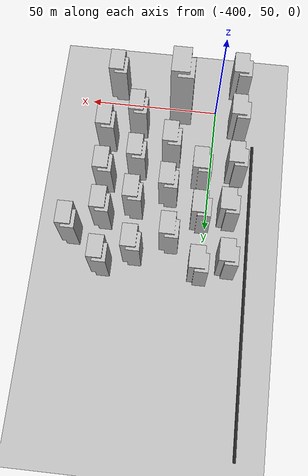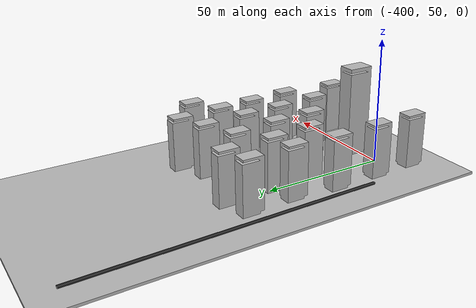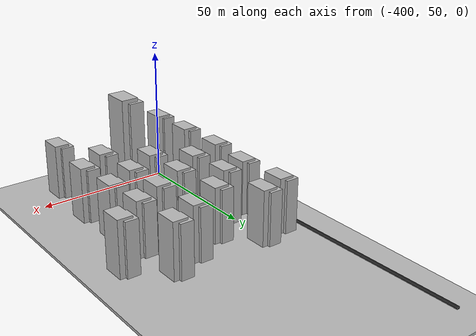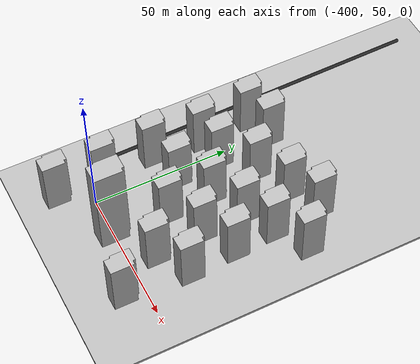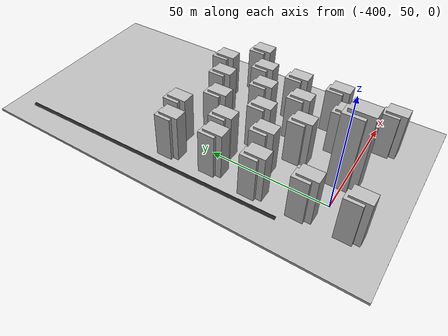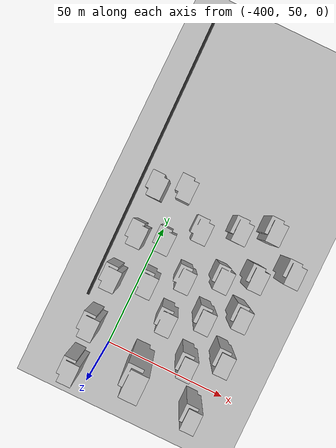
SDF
<sdf version="1.7">
 <world name="default">
  <model name="ground_plane">
   <static>1</static>
   <link name="link">
    <collision name="collision">
     <geometry><mesh><uri>model://ground_plane/scripts/plane.dae</uri><normal>0 0 1</normal></mesh></geometry>
     <surface><friction><ode><mu>100</mu><mu2>50</mu2></ode></friction></surface>
    </collision>
    <visual name="visual">
     <geometry><mesh><uri>model://ground_plane/scripts/plane.dae</uri><normal>0 0 1</normal></mesh></geometry>
     <material>
      <lighting>1</lighting>
      <script><uri>model://ground_plane/scripts/plane.jpg</uri><name>__default__</name></script>
      <shader type="pixel"/>
     </material>
    </visual>
   </link>
  </model>
  <model name="apartment1_0">
   <static>1</static>
   <link name="link_0">
    <inertial>
     <mass>1</mass>
     <inertia>
      <ixx>0.166667</ixx>
      <ixy>0</ixy>
      <ixz>0</ixz>
      <iyy>0.166667</iyy>
      <iyz>0</iyz>
      <izz>0.166667</izz>
     </inertia>
    </inertial>
    <pose>1e-06 -0 0 0 -0 0</pose>
    <visual name="visual">
     <geometry>
      <mesh><uri>model://apartment1/scripts/apartment1.dae</uri><scale>0.14 0.14 0.175</scale></mesh>
     </geometry>
     <material>
      <lighting>1</lighting>
      <script><uri>model://apartment1/scripts/apartment1.jpg</uri><name>__default__</name></script>
      <shader type="pixel"/>
     </material>
    </visual>
    <collision name="collision">
     <geometry>
      <mesh><uri>model://apartment1/scripts/apartment1.dae</uri><scale>0.14 0.14 0.175</scale></mesh>
     </geometry>
     <surface>
      <friction>
       <ode><mu>1</mu><mu2>1</mu2><fdir1>0 0 0</fdir1><slip1>0</slip1><slip2>0</slip2></ode>
       <torsional>
        <coefficient>1</coefficient>
        <patch_radius>0</patch_radius>
        <surface_radius>0</surface_radius>
        <use_patch_radius>1</use_patch_radius>
        <ode><slip>0</slip></ode>
       </torsional>
      </friction>
      <bounce><restitution_coefficient>0</restitution_coefficient><threshold>1e+06</threshold></bounce>
      <contact>
       <collide_without_contact>0</collide_without_contact>
       <collide_without_contact_bitmask>1</collide_without_contact_bitmask>
       <collide_bitmask>1</collide_bitmask>
       <ode>
        <soft_cfm>0</soft_cfm>
        <soft_erp>0.2</soft_erp>
        <kp>1e+13</kp>
        <kd>1</kd>
        <max_vel>0.01</max_vel>
        <min_depth>0</min_depth>
       </ode>
       <bullet>
        <split_impulse>1</split_impulse>
        <split_impulse_penetration_threshold>-0.01</split_impulse_penetration_threshold>
        <soft_cfm>0</soft_cfm>
        <soft_erp>0.2</soft_erp>
        <kp>1e+13</kp>
        <kd>1</kd>
       </bullet>
      </contact>
     </surface>
    </collision>
   </link>
   <static>0</static>
   <pose>-407.043 94.3264 0 0 -0 0</pose>
  </model>
  <model name="apartment1_0_clone">
   <static>1</static>
   <link name="link_0">
    <inertial>
     <mass>1</mass>
     <inertia>
      <ixx>0.166667</ixx>
      <ixy>0</ixy>
      <ixz>0</ixz>
      <iyy>0.166667</iyy>
      <iyz>0</iyz>
      <izz>0.166667</izz>
     </inertia>
    </inertial>
    <pose>1e-06 -0 0 0 -0 0</pose>
    <visual name="visual">
     <geometry>
      <mesh><uri>model://apartment1/scripts/apartment1.dae</uri><scale>0.14 0.14 0.175</scale></mesh>
     </geometry>
     <material>
      <lighting>1</lighting>
      <script><uri>model://apartment1/scripts/apartment1.jpg</uri><name>__default__</name></script>
      <shader type="pixel"/>
     </material>
    </visual>
    <collision name="collision">
     <geometry>
      <mesh><uri>model://apartment1/scripts/apartment1.dae</uri><scale>0.14 0.14 0.175</scale></mesh>
     </geometry>
     <surface>
      <friction>
       <ode><mu>1</mu><mu2>1</mu2><fdir1>0 0 0</fdir1><slip1>0</slip1><slip2>0</slip2></ode>
       <torsional>
        <coefficient>1</coefficient>
        <patch_radius>0</patch_radius>
        <surface_radius>0</surface_radius>
        <use_patch_radius>1</use_patch_radius>
        <ode><slip>0</slip></ode>
       </torsional>
      </friction>
      <bounce><restitution_coefficient>0</restitution_coefficient><threshold>1e+06</threshold></bounce>
      <contact>
       <collide_without_contact>0</collide_without_contact>
       <collide_without_contact_bitmask>1</collide_without_contact_bitmask>
       <collide_bitmask>1</collide_bitmask>
       <ode>
        <soft_cfm>0</soft_cfm>
        <soft_erp>0.2</soft_erp>
        <kp>1e+13</kp>
        <kd>1</kd>
        <max_vel>0.01</max_vel>
        <min_depth>0</min_depth>
       </ode>
       <bullet>
        <split_impulse>1</split_impulse>
        <split_impulse_penetration_threshold>-0.01</split_impulse_penetration_threshold>
        <soft_cfm>0</soft_cfm>
        <soft_erp>0.2</soft_erp>
        <kp>1e+13</kp>
        <kd>1</kd>
       </bullet>
      </contact>
     </surface>
    </collision>
   </link>
   <static>0</static>
   <pose>-408.706 75.8334 0 0 -0 0</pose>
  </model>
  <model name="apartment1_0_clone_0">
   <static>1</static>
   <link name="link_0">
    <inertial>
     <mass>1</mass>
     <inertia>
      <ixx>0.166667</ixx>
      <ixy>0</ixy>
      <ixz>0</ixz>
      <iyy>0.166667</iyy>
      <iyz>0</iyz>
      <izz>0.166667</izz>
     </inertia>
    </inertial>
    <pose>1e-06 -0 0 0 -0 0</pose>
    <visual name="visual">
     <geometry>
      <mesh><uri>model://apartment1/scripts/apartment1.dae</uri><scale>0.14 0.14 0.175</scale></mesh>
     </geometry>
     <material>
      <lighting>1</lighting>
      <script><uri>model://apartment1/scripts/apartment1.jpg</uri><name>__default__</name></script>
      <shader type="pixel"/>
     </material>
    </visual>
    <collision name="collision">
     <geometry>
      <mesh><uri>model://apartment1/scripts/apartment1.dae</uri><scale>0.14 0.14 0.175</scale></mesh>
     </geometry>
     <surface>
      <friction>
       <ode><mu>1</mu><mu2>1</mu2><fdir1>0 0 0</fdir1><slip1>0</slip1><slip2>0</slip2></ode>
       <torsional>
        <coefficient>1</coefficient>
        <patch_radius>0</patch_radius>
        <surface_radius>0</surface_radius>
        <use_patch_radius>1</use_patch_radius>
        <ode><slip>0</slip></ode>
       </torsional>
      </friction>
      <bounce><restitution_coefficient>0</restitution_coefficient><threshold>1e+06</threshold></bounce>
      <contact>
       <collide_without_contact>0</collide_without_contact>
       <collide_without_contact_bitmask>1</collide_without_contact_bitmask>
       <collide_bitmask>1</collide_bitmask>
       <ode>
        <soft_cfm>0</soft_cfm>
        <soft_erp>0.2</soft_erp>
        <kp>1e+13</kp>
        <kd>1</kd>
        <max_vel>0.01</max_vel>
        <min_depth>0</min_depth>
       </ode>
       <bullet>
        <split_impulse>1</split_impulse>
        <split_impulse_penetration_threshold>-0.01</split_impulse_penetration_threshold>
        <soft_cfm>0</soft_cfm>
        <soft_erp>0.2</soft_erp>
        <kp>1e+13</kp>
        <kd>1</kd>
       </bullet>
      </contact>
     </surface>
    </collision>
   </link>
   <static>0</static>
   <pose>-408.281 56.4981 0 0 -0 0</pose>
  </model>
  <model name="apartment1_0_clone_1">
   <static>1</static>
   <link name="link_0">
    <inertial>
     <mass>1</mass>
     <inertia>
      <ixx>0.166667</ixx>
      <ixy>0</ixy>
      <ixz>0</ixz>
      <iyy>0.166667</iyy>
      <iyz>0</iyz>
      <izz>0.166667</izz>
     </inertia>
    </inertial>
    <pose>1e-06 -0 0 0 -0 0</pose>
    <visual name="visual">
     <geometry>
      <mesh><uri>model://apartment1/scripts/apartment1.dae</uri><scale>0.14 0.14 0.175</scale></mesh>
     </geometry>
     <material>
      <lighting>1</lighting>
      <script><uri>model://apartment1/scripts/apartment1.jpg</uri><name>__default__</name></script>
      <shader type="pixel"/>
     </material>
    </visual>
    <collision name="collision">
     <geometry>
      <mesh><uri>model://apartment1/scripts/apartment1.dae</uri><scale>0.14 0.14 0.175</scale></mesh>
     </geometry>
     <surface>
      <friction>
       <ode><mu>1</mu><mu2>1</mu2><fdir1>0 0 0</fdir1><slip1>0</slip1><slip2>0</slip2></ode>
       <torsional>
        <coefficient>1</coefficient>
        <patch_radius>0</patch_radius>
        <surface_radius>0</surface_radius>
        <use_patch_radius>1</use_patch_radius>
        <ode><slip>0</slip></ode>
       </torsional>
      </friction>
      <bounce><restitution_coefficient>0</restitution_coefficient><threshold>1e+06</threshold></bounce>
      <contact>
       <collide_without_contact>0</collide_without_contact>
       <collide_without_contact_bitmask>1</collide_without_contact_bitmask>
       <collide_bitmask>1</collide_bitmask>
       <ode>
        <soft_cfm>0</soft_cfm>
        <soft_erp>0.2</soft_erp>
        <kp>1e+13</kp>
        <kd>1</kd>
        <max_vel>0.01</max_vel>
        <min_depth>0</min_depth>
       </ode>
       <bullet>
        <split_impulse>1</split_impulse>
        <split_impulse_penetration_threshold>-0.01</split_impulse_penetration_threshold>
        <soft_cfm>0</soft_cfm>
        <soft_erp>0.2</soft_erp>
        <kp>1e+13</kp>
        <kd>1</kd>
       </bullet>
      </contact>
     </surface>
    </collision>
   </link>
   <static>0</static>
   <pose>-407.724 38.7538 0 0 -0 0</pose>
  </model>
  <model name="apartment1_0_clone_12">
   <static>1</static>
   <link name="link_0">
    <inertial>
     <mass>1</mass>
     <inertia>
      <ixx>0.166667</ixx>
      <ixy>0</ixy>
      <ixz>0</ixz>
      <iyy>0.166667</iyy>
      <iyz>0</iyz>
      <izz>0.166667</izz>
     </inertia>
    </inertial>
    <pose>1e-06 -0 0 0 -0 0</pose>
    <visual name="visual">
     <geometry>
      <mesh><uri>model://apartment1/scripts/apartment1.dae</uri><scale>0.14 0.14 0.175</scale></mesh>
     </geometry>
     <material>
      <lighting>1</lighting>
      <script><uri>model://apartment1/scripts/apartment1.jpg</uri><name>__default__</name></script>
      <shader type="pixel"/>
     </material>
    </visual>
    <collision name="collision">
     <geometry>
      <mesh><uri>model://apartment1/scripts/apartment1.dae</uri><scale>0.14 0.14 0.175</scale></mesh>
     </geometry>
     <surface>
      <friction>
       <ode><mu>1</mu><mu2>1</mu2><fdir1>0 0 0</fdir1><slip1>0</slip1><slip2>0</slip2></ode>
       <torsional>
        <coefficient>1</coefficient>
        <patch_radius>0</patch_radius>
        <surface_radius>0</surface_radius>
        <use_patch_radius>1</use_patch_radius>
        <ode><slip>0</slip></ode>
       </torsional>
      </friction>
      <bounce><restitution_coefficient>0</restitution_coefficient><threshold>1e+06</threshold></bounce>
      <contact>
       <collide_without_contact>0</collide_without_contact>
       <collide_without_contact_bitmask>1</collide_without_contact_bitmask>
       <collide_bitmask>1</collide_bitmask>
       <ode>
        <soft_cfm>0</soft_cfm>
        <soft_erp>0.2</soft_erp>
        <kp>1e+13</kp>
        <kd>1</kd>
        <max_vel>0.01</max_vel>
        <min_depth>0</min_depth>
       </ode>
       <bullet>
        <split_impulse>1</split_impulse>
        <split_impulse_penetration_threshold>-0.01</split_impulse_penetration_threshold>
        <soft_cfm>0</soft_cfm>
        <soft_erp>0.2</soft_erp>
        <kp>1e+13</kp>
        <kd>1</kd>
       </bullet>
      </contact>
     </surface>
    </collision>
   </link>
   <static>0</static>
   <pose>-408.092 113.388 0 0 -0 0</pose>
  </model>
  <model name="apartment1_0_clone_45">
   <static>1</static>
   <link name="link_0">
    <inertial>
     <mass>1</mass>
     <inertia>
      <ixx>0.166667</ixx>
      <ixy>0</ixy>
      <ixz>0</ixz>
      <iyy>0.166667</iyy>
      <iyz>0</iyz>
      <izz>0.166667</izz>
     </inertia>
    </inertial>
    <pose>1e-06 -0 0 0 -0 0</pose>
    <visual name="visual">
     <geometry>
      <mesh><uri>model://apartment1/scripts/apartment1.dae</uri><scale>0.14 0.14 0.175</scale></mesh>
     </geometry>
     <material>
      <lighting>1</lighting>
      <script><uri>model://apartment1/scripts/apartment1.jpg</uri><name>__default__</name></script>
      <shader type="pixel"/>
     </material>
    </visual>
    <collision name="collision">
     <geometry>
      <mesh><uri>model://apartment1/scripts/apartment1.dae</uri><scale>0.14 0.14 0.175</scale></mesh>
     </geometry>
     <surface>
      <friction>
       <ode><mu>1</mu><mu2>1</mu2><fdir1>0 0 0</fdir1><slip1>0</slip1><slip2>0</slip2></ode>
       <torsional>
        <coefficient>1</coefficient>
        <patch_radius>0</patch_radius>
        <surface_radius>0</surface_radius>
        <use_patch_radius>1</use_patch_radius>
        <ode><slip>0</slip></ode>
       </torsional>
      </friction>
      <bounce><restitution_coefficient>0</restitution_coefficient><threshold>1e+06</threshold></bounce>
      <contact>
       <collide_without_contact>0</collide_without_contact>
       <collide_without_contact_bitmask>1</collide_without_contact_bitmask>
       <collide_bitmask>1</collide_bitmask>
       <ode>
        <soft_cfm>0</soft_cfm>
        <soft_erp>0.2</soft_erp>
        <kp>1e+13</kp>
        <kd>1</kd>
        <max_vel>0.01</max_vel>
        <min_depth>0</min_depth>
       </ode>
       <bullet>
        <split_impulse>1</split_impulse>
        <split_impulse_penetration_threshold>-0.01</split_impulse_penetration_threshold>
        <soft_cfm>0</soft_cfm>
        <soft_erp>0.2</soft_erp>
        <kp>1e+13</kp>
        <kd>1</kd>
       </bullet>
      </contact>
     </surface>
    </collision>
   </link>
   <static>0</static>
   <pose>-360.235 42.4394 0 0 -0 0</pose>
  </model>
  <model name="apartment1_0_clone_1_clone_1">
   <static>1</static>
   <link name="link_0">
    <inertial>
     <mass>1</mass>
     <inertia>
      <ixx>0.166667</ixx>
      <ixy>0</ixy>
      <ixz>0</ixz>
      <iyy>0.166667</iyy>
      <iyz>0</iyz>
      <izz>0.166667</izz>
     </inertia>
    </inertial>
    <pose>1e-06 -0 0 0 -0 0</pose>
    <visual name="visual">
     <geometry>
      <mesh><uri>model://apartment1/scripts/apartment1.dae</uri><scale>0.14 0.14 0.175</scale></mesh>
     </geometry>
     <material>
      <lighting>1</lighting>
      <script><uri>model://apartment1/scripts/apartment1.jpg</uri><name>__default__</name></script>
      <shader type="pixel"/>
     </material>
    </visual>
    <collision name="collision">
     <geometry>
      <mesh><uri>model://apartment1/scripts/apartment1.dae</uri><scale>0.14 0.14 0.175</scale></mesh>
     </geometry>
     <surface>
      <friction>
       <ode><mu>1</mu><mu2>1</mu2><fdir1>0 0 0</fdir1><slip1>0</slip1><slip2>0</slip2></ode>
       <torsional>
        <coefficient>1</coefficient>
        <patch_radius>0</patch_radius>
        <surface_radius>0</surface_radius>
        <use_patch_radius>1</use_patch_radius>
        <ode><slip>0</slip></ode>
       </torsional>
      </friction>
      <bounce><restitution_coefficient>0</restitution_coefficient><threshold>1e+06</threshold></bounce>
      <contact>
       <collide_without_contact>0</collide_without_contact>
       <collide_without_contact_bitmask>1</collide_without_contact_bitmask>
       <collide_bitmask>1</collide_bitmask>
       <ode>
        <soft_cfm>0</soft_cfm>
        <soft_erp>0.2</soft_erp>
        <kp>1e+13</kp>
        <kd>1</kd>
        <max_vel>0.01</max_vel>
        <min_depth>0</min_depth>
       </ode>
       <bullet>
        <split_impulse>1</split_impulse>
        <split_impulse_penetration_threshold>-0.01</split_impulse_penetration_threshold>
        <soft_cfm>0</soft_cfm>
        <soft_erp>0.2</soft_erp>
        <kp>1e+13</kp>
        <kd>1</kd>
       </bullet>
      </contact>
     </surface>
    </collision>
   </link>
   <static>0</static>
   <pose>-369.727 58.68 0 0 -0 0</pose>
  </model>
  <model name="apartment1_0_clone_1_clone_2">
   <static>1</static>
   <link name="link_0">
    <inertial>
     <mass>1</mass>
     <inertia>
      <ixx>0.166667</ixx>
      <ixy>0</ixy>
      <ixz>0</ixz>
      <iyy>0.166667</iyy>
      <iyz>0</iyz>
      <izz>0.166667</izz>
     </inertia>
    </inertial>
    <pose>1e-06 -0 0 0 -0 0</pose>
    <visual name="visual">
     <geometry>
      <mesh><uri>model://apartment1/scripts/apartment1.dae</uri><scale>0.14 0.14 0.175</scale></mesh>
     </geometry>
     <material>
      <lighting>1</lighting>
      <script><uri>model://apartment1/scripts/apartment1.jpg</uri><name>__default__</name></script>
      <shader type="pixel"/>
     </material>
    </visual>
    <collision name="collision">
     <geometry>
      <mesh><uri>model://apartment1/scripts/apartment1.dae</uri><scale>0.14 0.14 0.175</scale></mesh>
     </geometry>
     <surface>
      <friction>
       <ode><mu>1</mu><mu2>1</mu2><fdir1>0 0 0</fdir1><slip1>0</slip1><slip2>0</slip2></ode>
       <torsional>
        <coefficient>1</coefficient>
        <patch_radius>0</patch_radius>
        <surface_radius>0</surface_radius>
        <use_patch_radius>1</use_patch_radius>
        <ode><slip>0</slip></ode>
       </torsional>
      </friction>
      <bounce><restitution_coefficient>0</restitution_coefficient><threshold>1e+06</threshold></bounce>
      <contact>
       <collide_without_contact>0</collide_without_contact>
       <collide_without_contact_bitmask>1</collide_without_contact_bitmask>
       <collide_bitmask>1</collide_bitmask>
       <ode>
        <soft_cfm>0</soft_cfm>
        <soft_erp>0.2</soft_erp>
        <kp>1e+13</kp>
        <kd>1</kd>
        <max_vel>0.01</max_vel>
        <min_depth>0</min_depth>
       </ode>
       <bullet>
        <split_impulse>1</split_impulse>
        <split_impulse_penetration_threshold>-0.01</split_impulse_penetration_threshold>
        <soft_cfm>0</soft_cfm>
        <soft_erp>0.2</soft_erp>
        <kp>1e+13</kp>
        <kd>1</kd>
       </bullet>
      </contact>
     </surface>
    </collision>
   </link>
   <static>0</static>
   <pose>-358.222 65.8148 0 0 -0 0</pose>
  </model>
  <model name="apartment1_0_clone_1_clone_9">
   <static>1</static>
   <link name="link_0">
    <inertial>
     <mass>1</mass>
     <inertia>
      <ixx>0.166667</ixx>
      <ixy>0</ixy>
      <ixz>0</ixz>
      <iyy>0.166667</iyy>
      <iyz>0</iyz>
      <izz>0.166667</izz>
     </inertia>
    </inertial>
    <pose>1e-06 -0 0 0 -0 0</pose>
    <visual name="visual">
     <geometry>
      <mesh><uri>model://apartment1/scripts/apartment1.dae</uri><scale>0.14 0.14 0.175</scale></mesh>
     </geometry>
     <material>
      <lighting>1</lighting>
      <script><uri>model://apartment1/scripts/apartment1.jpg</uri><name>__default__</name></script>
      <shader type="pixel"/>
     </material>
    </visual>
    <collision name="collision">
     <geometry>
      <mesh><uri>model://apartment1/scripts/apartment1.dae</uri><scale>0.14 0.14 0.175</scale></mesh>
     </geometry>
     <surface>
      <friction>
       <ode><mu>1</mu><mu2>1</mu2><fdir1>0 0 0</fdir1><slip1>0</slip1><slip2>0</slip2></ode>
       <torsional>
        <coefficient>1</coefficient>
        <patch_radius>0</patch_radius>
        <surface_radius>0</surface_radius>
        <use_patch_radius>1</use_patch_radius>
        <ode><slip>0</slip></ode>
       </torsional>
      </friction>
      <bounce><restitution_coefficient>0</restitution_coefficient><threshold>1e+06</threshold></bounce>
      <contact>
       <collide_without_contact>0</collide_without_contact>
       <collide_without_contact_bitmask>1</collide_without_contact_bitmask>
       <collide_bitmask>1</collide_bitmask>
       <ode>
        <soft_cfm>0</soft_cfm>
        <soft_erp>0.2</soft_erp>
        <kp>1e+13</kp>
        <kd>1</kd>
        <max_vel>0.01</max_vel>
        <min_depth>0</min_depth>
       </ode>
       <bullet>
        <split_impulse>1</split_impulse>
        <split_impulse_penetration_threshold>-0.01</split_impulse_penetration_threshold>
        <soft_cfm>0</soft_cfm>
        <soft_erp>0.2</soft_erp>
        <kp>1e+13</kp>
        <kd>1</kd>
       </bullet>
      </contact>
     </surface>
    </collision>
   </link>
   <static>0</static>
   <pose>-383.665 70.1274 0 0 -0 0</pose>
  </model>
  <model name="apartment1_0_clone_1_clone_10">
   <static>1</static>
   <link name="link_0">
    <inertial>
     <mass>1</mass>
     <inertia>
      <ixx>0.166667</ixx>
      <ixy>0</ixy>
      <ixz>0</ixz>
      <iyy>0.166667</iyy>
      <iyz>0</iyz>
      <izz>0.166667</izz>
     </inertia>
    </inertial>
    <pose>1e-06 -0 0 0 -0 0</pose>
    <visual name="visual">
     <geometry>
      <mesh><uri>model://apartment1/scripts/apartment1.dae</uri><scale>0.14 0.14 0.175</scale></mesh>
     </geometry>
     <material>
      <lighting>1</lighting>
      <script><uri>model://apartment1/scripts/apartment1.jpg</uri><name>__default__</name></script>
      <shader type="pixel"/>
     </material>
    </visual>
    <collision name="collision">
     <geometry>
      <mesh><uri>model://apartment1/scripts/apartment1.dae</uri><scale>0.14 0.14 0.175</scale></mesh>
     </geometry>
     <surface>
      <friction>
       <ode><mu>1</mu><mu2>1</mu2><fdir1>0 0 0</fdir1><slip1>0</slip1><slip2>0</slip2></ode>
       <torsional>
        <coefficient>1</coefficient>
        <patch_radius>0</patch_radius>
        <surface_radius>0</surface_radius>
        <use_patch_radius>1</use_patch_radius>
        <ode><slip>0</slip></ode>
       </torsional>
      </friction>
      <bounce><restitution_coefficient>0</restitution_coefficient><threshold>1e+06</threshold></bounce>
      <contact>
       <collide_without_contact>0</collide_without_contact>
       <collide_without_contact_bitmask>1</collide_without_contact_bitmask>
       <collide_bitmask>1</collide_bitmask>
       <ode>
        <soft_cfm>0</soft_cfm>
        <soft_erp>0.2</soft_erp>
        <kp>1e+13</kp>
        <kd>1</kd>
        <max_vel>0.01</max_vel>
        <min_depth>0</min_depth>
       </ode>
       <bullet>
        <split_impulse>1</split_impulse>
        <split_impulse_penetration_threshold>-0.01</split_impulse_penetration_threshold>
        <soft_cfm>0</soft_cfm>
        <soft_erp>0.2</soft_erp>
        <kp>1e+13</kp>
        <kd>1</kd>
       </bullet>
      </contact>
     </surface>
    </collision>
   </link>
   <static>0</static>
   <pose>-371.168 76.8511 0 0 -0 0</pose>
  </model>
  <model name="apartment1_0_clone_1_clone_11">
   <static>1</static>
   <link name="link_0">
    <inertial>
     <mass>1</mass>
     <inertia>
      <ixx>0.166667</ixx>
      <ixy>0</ixy>
      <ixz>0</ixz>
      <iyy>0.166667</iyy>
      <iyz>0</iyz>
      <izz>0.166667</izz>
     </inertia>
    </inertial>
    <pose>1e-06 -0 0 0 -0 0</pose>
    <visual name="visual">
     <geometry>
      <mesh><uri>model://apartment1/scripts/apartment1.dae</uri><scale>0.14 0.14 0.175</scale></mesh>
     </geometry>
     <material>
      <lighting>1</lighting>
      <script><uri>model://apartment1/scripts/apartment1.jpg</uri><name>__default__</name></script>
      <shader type="pixel"/>
     </material>
    </visual>
    <collision name="collision">
     <geometry>
      <mesh><uri>model://apartment1/scripts/apartment1.dae</uri><scale>0.14 0.14 0.175</scale></mesh>
     </geometry>
     <surface>
      <friction>
       <ode><mu>1</mu><mu2>1</mu2><fdir1>0 0 0</fdir1><slip1>0</slip1><slip2>0</slip2></ode>
       <torsional>
        <coefficient>1</coefficient>
        <patch_radius>0</patch_radius>
        <surface_radius>0</surface_radius>
        <use_patch_radius>1</use_patch_radius>
        <ode><slip>0</slip></ode>
       </torsional>
      </friction>
      <bounce><restitution_coefficient>0</restitution_coefficient><threshold>1e+06</threshold></bounce>
      <contact>
       <collide_without_contact>0</collide_without_contact>
       <collide_without_contact_bitmask>1</collide_without_contact_bitmask>
       <collide_bitmask>1</collide_bitmask>
       <ode>
        <soft_cfm>0</soft_cfm>
        <soft_erp>0.2</soft_erp>
        <kp>1e+13</kp>
        <kd>1</kd>
        <max_vel>0.01</max_vel>
        <min_depth>0</min_depth>
       </ode>
       <bullet>
        <split_impulse>1</split_impulse>
        <split_impulse_penetration_threshold>-0.01</split_impulse_penetration_threshold>
        <soft_cfm>0</soft_cfm>
        <soft_erp>0.2</soft_erp>
        <kp>1e+13</kp>
        <kd>1</kd>
       </bullet>
      </contact>
     </surface>
    </collision>
   </link>
   <static>0</static>
   <pose>-359.446 83.2664 0 0 -0 0</pose>
  </model>
  <model name="apartment1_0_clone_1_clone_17">
   <static>1</static>
   <link name="link_0">
    <inertial>
     <mass>1</mass>
     <inertia>
      <ixx>0.166667</ixx>
      <ixy>0</ixy>
      <ixz>0</ixz>
      <iyy>0.166667</iyy>
      <iyz>0</iyz>
      <izz>0.166667</izz>
     </inertia>
    </inertial>
    <pose>1e-06 -0 0 0 -0 0</pose>
    <visual name="visual">
     <geometry>
      <mesh><uri>model://apartment1/scripts/apartment1.dae</uri><scale>0.14 0.14 0.175</scale></mesh>
     </geometry>
     <material>
      <lighting>1</lighting>
      <script><uri>model://apartment1/scripts/apartment1.jpg</uri><name>__default__</name></script>
      <shader type="pixel"/>
     </material>
    </visual>
    <collision name="collision">
     <geometry>
      <mesh><uri>model://apartment1/scripts/apartment1.dae</uri><scale>0.14 0.14 0.175</scale></mesh>
     </geometry>
     <surface>
      <friction>
       <ode><mu>1</mu><mu2>1</mu2><fdir1>0 0 0</fdir1><slip1>0</slip1><slip2>0</slip2></ode>
       <torsional>
        <coefficient>1</coefficient>
        <patch_radius>0</patch_radius>
        <surface_radius>0</surface_radius>
        <use_patch_radius>1</use_patch_radius>
        <ode><slip>0</slip></ode>
       </torsional>
      </friction>
      <bounce><restitution_coefficient>0</restitution_coefficient><threshold>1e+06</threshold></bounce>
      <contact>
       <collide_without_contact>0</collide_without_contact>
       <collide_without_contact_bitmask>1</collide_without_contact_bitmask>
       <collide_bitmask>1</collide_bitmask>
       <ode>
        <soft_cfm>0</soft_cfm>
        <soft_erp>0.2</soft_erp>
        <kp>1e+13</kp>
        <kd>1</kd>
        <max_vel>0.01</max_vel>
        <min_depth>0</min_depth>
       </ode>
       <bullet>
        <split_impulse>1</split_impulse>
        <split_impulse_penetration_threshold>-0.01</split_impulse_penetration_threshold>
        <soft_cfm>0</soft_cfm>
        <soft_erp>0.2</soft_erp>
        <kp>1e+13</kp>
        <kd>1</kd>
       </bullet>
      </contact>
     </surface>
    </collision>
   </link>
   <static>0</static>
   <pose>-395.846 79.5172 0 0 -0 0</pose>
  </model>
  <model name="apartment1_0_clone_1_clone_18">
   <static>1</static>
   <link name="link_0">
    <inertial>
     <mass>1</mass>
     <inertia>
      <ixx>0.166667</ixx>
      <ixy>0</ixy>
      <ixz>0</ixz>
      <iyy>0.166667</iyy>
      <iyz>0</iyz>
      <izz>0.166667</izz>
     </inertia>
    </inertial>
    <pose>1e-06 -0 0 0 -0 0</pose>
    <visual name="visual">
     <geometry>
      <mesh><uri>model://apartment1/scripts/apartment1.dae</uri><scale>0.14 0.14 0.175</scale></mesh>
     </geometry>
     <material>
      <lighting>1</lighting>
      <script><uri>model://apartment1/scripts/apartment1.jpg</uri><name>__default__</name></script>
      <shader type="pixel"/>
     </material>
    </visual>
    <collision name="collision">
     <geometry>
      <mesh><uri>model://apartment1/scripts/apartment1.dae</uri><scale>0.14 0.14 0.175</scale></mesh>
     </geometry>
     <surface>
      <friction>
       <ode><mu>1</mu><mu2>1</mu2><fdir1>0 0 0</fdir1><slip1>0</slip1><slip2>0</slip2></ode>
       <torsional>
        <coefficient>1</coefficient>
        <patch_radius>0</patch_radius>
        <surface_radius>0</surface_radius>
        <use_patch_radius>1</use_patch_radius>
        <ode><slip>0</slip></ode>
       </torsional>
      </friction>
      <bounce><restitution_coefficient>0</restitution_coefficient><threshold>1e+06</threshold></bounce>
      <contact>
       <collide_without_contact>0</collide_without_contact>
       <collide_without_contact_bitmask>1</collide_without_contact_bitmask>
       <collide_bitmask>1</collide_bitmask>
       <ode>
        <soft_cfm>0</soft_cfm>
        <soft_erp>0.2</soft_erp>
        <kp>1e+13</kp>
        <kd>1</kd>
        <max_vel>0.01</max_vel>
        <min_depth>0</min_depth>
       </ode>
       <bullet>
        <split_impulse>1</split_impulse>
        <split_impulse_penetration_threshold>-0.01</split_impulse_penetration_threshold>
        <soft_cfm>0</soft_cfm>
        <soft_erp>0.2</soft_erp>
        <kp>1e+13</kp>
        <kd>1</kd>
       </bullet>
      </contact>
     </surface>
    </collision>
   </link>
   <static>0</static>
   <pose>-384.143 87.0357 0 0 -0 0</pose>
  </model>
  <model name="apartment1_0_clone_1_clone_19">
   <static>1</static>
   <link name="link_0">
    <inertial>
     <mass>1</mass>
     <inertia>
      <ixx>0.166667</ixx>
      <ixy>0</ixy>
      <ixz>0</ixz>
      <iyy>0.166667</iyy>
      <iyz>0</iyz>
      <izz>0.166667</izz>
     </inertia>
    </inertial>
    <pose>1e-06 -0 0 0 -0 0</pose>
    <visual name="visual">
     <geometry>
      <mesh><uri>model://apartment1/scripts/apartment1.dae</uri><scale>0.14 0.14 0.175</scale></mesh>
     </geometry>
     <material>
      <lighting>1</lighting>
      <script><uri>model://apartment1/scripts/apartment1.jpg</uri><name>__default__</name></script>
      <shader type="pixel"/>
     </material>
    </visual>
    <collision name="collision">
     <geometry>
      <mesh><uri>model://apartment1/scripts/apartment1.dae</uri><scale>0.14 0.14 0.175</scale></mesh>
     </geometry>
     <surface>
      <friction>
       <ode><mu>1</mu><mu2>1</mu2><fdir1>0 0 0</fdir1><slip1>0</slip1><slip2>0</slip2></ode>
       <torsional>
        <coefficient>1</coefficient>
        <patch_radius>0</patch_radius>
        <surface_radius>0</surface_radius>
        <use_patch_radius>1</use_patch_radius>
        <ode><slip>0</slip></ode>
       </torsional>
      </friction>
      <bounce><restitution_coefficient>0</restitution_coefficient><threshold>1e+06</threshold></bounce>
      <contact>
       <collide_without_contact>0</collide_without_contact>
       <collide_without_contact_bitmask>1</collide_without_contact_bitmask>
       <collide_bitmask>1</collide_bitmask>
       <ode>
        <soft_cfm>0</soft_cfm>
        <soft_erp>0.2</soft_erp>
        <kp>1e+13</kp>
        <kd>1</kd>
        <max_vel>0.01</max_vel>
        <min_depth>0</min_depth>
       </ode>
       <bullet>
        <split_impulse>1</split_impulse>
        <split_impulse_penetration_threshold>-0.01</split_impulse_penetration_threshold>
        <soft_cfm>0</soft_cfm>
        <soft_erp>0.2</soft_erp>
        <kp>1e+13</kp>
        <kd>1</kd>
       </bullet>
      </contact>
     </surface>
    </collision>
   </link>
   <static>0</static>
   <pose>-371.685 93.2054 0 0 -0 0</pose>
  </model>
  <model name="apartment1_0_clone_1_clone_20">
   <static>1</static>
   <link name="link_0">
    <inertial>
     <mass>1</mass>
     <inertia>
      <ixx>0.166667</ixx>
      <ixy>0</ixy>
      <ixz>0</ixz>
      <iyy>0.166667</iyy>
      <iyz>0</iyz>
      <izz>0.166667</izz>
     </inertia>
    </inertial>
    <pose>1e-06 -0 0 0 -0 0</pose>
    <visual name="visual">
     <geometry>
      <mesh><uri>model://apartment1/scripts/apartment1.dae</uri><scale>0.14 0.14 0.175</scale></mesh>
     </geometry>
     <material>
      <lighting>1</lighting>
      <script><uri>model://apartment1/scripts/apartment1.jpg</uri><name>__default__</name></script>
      <shader type="pixel"/>
     </material>
    </visual>
    <collision name="collision">
     <geometry>
      <mesh><uri>model://apartment1/scripts/apartment1.dae</uri><scale>0.14 0.14 0.175</scale></mesh>
     </geometry>
     <surface>
      <friction>
       <ode><mu>1</mu><mu2>1</mu2><fdir1>0 0 0</fdir1><slip1>0</slip1><slip2>0</slip2></ode>
       <torsional>
        <coefficient>1</coefficient>
        <patch_radius>0</patch_radius>
        <surface_radius>0</surface_radius>
        <use_patch_radius>1</use_patch_radius>
        <ode><slip>0</slip></ode>
       </torsional>
      </friction>
      <bounce><restitution_coefficient>0</restitution_coefficient><threshold>1e+06</threshold></bounce>
      <contact>
       <collide_without_contact>0</collide_without_contact>
       <collide_without_contact_bitmask>1</collide_without_contact_bitmask>
       <collide_bitmask>1</collide_bitmask>
       <ode>
        <soft_cfm>0</soft_cfm>
        <soft_erp>0.2</soft_erp>
        <kp>1e+13</kp>
        <kd>1</kd>
        <max_vel>0.01</max_vel>
        <min_depth>0</min_depth>
       </ode>
       <bullet>
        <split_impulse>1</split_impulse>
        <split_impulse_penetration_threshold>-0.01</split_impulse_penetration_threshold>
        <soft_cfm>0</soft_cfm>
        <soft_erp>0.2</soft_erp>
        <kp>1e+13</kp>
        <kd>1</kd>
       </bullet>
      </contact>
     </surface>
    </collision>
   </link>
   <static>0</static>
   <pose>-360.49 98.5861 0 0 -0 0</pose>
  </model>
  <model name="apartment1_0_clone_1_clone_21">
   <static>1</static>
   <link name="link_0">
    <inertial>
     <mass>1</mass>
     <inertia>
      <ixx>0.166667</ixx>
      <ixy>0</ixy>
      <ixz>0</ixz>
      <iyy>0.166667</iyy>
      <iyz>0</iyz>
      <izz>0.166667</izz>
     </inertia>
    </inertial>
    <pose>1e-06 -0 0 0 -0 0</pose>
    <visual name="visual">
     <geometry>
      <mesh><uri>model://apartment1/scripts/apartment1.dae</uri><scale>0.14 0.14 0.175</scale></mesh>
     </geometry>
     <material>
      <lighting>1</lighting>
      <script><uri>model://apartment1/scripts/apartment1.jpg</uri><name>__default__</name></script>
      <shader type="pixel"/>
     </material>
    </visual>
    <collision name="collision">
     <geometry>
      <mesh><uri>model://apartment1/scripts/apartment1.dae</uri><scale>0.14 0.14 0.175</scale></mesh>
     </geometry>
     <surface>
      <friction>
       <ode><mu>1</mu><mu2>1</mu2><fdir1>0 0 0</fdir1><slip1>0</slip1><slip2>0</slip2></ode>
       <torsional>
        <coefficient>1</coefficient>
        <patch_radius>0</patch_radius>
        <surface_radius>0</surface_radius>
        <use_patch_radius>1</use_patch_radius>
        <ode><slip>0</slip></ode>
       </torsional>
      </friction>
      <bounce><restitution_coefficient>0</restitution_coefficient><threshold>1e+06</threshold></bounce>
      <contact>
       <collide_without_contact>0</collide_without_contact>
       <collide_without_contact_bitmask>1</collide_without_contact_bitmask>
       <collide_bitmask>1</collide_bitmask>
       <ode>
        <soft_cfm>0</soft_cfm>
        <soft_erp>0.2</soft_erp>
        <kp>1e+13</kp>
        <kd>1</kd>
        <max_vel>0.01</max_vel>
        <min_depth>0</min_depth>
       </ode>
       <bullet>
        <split_impulse>1</split_impulse>
        <split_impulse_penetration_threshold>-0.01</split_impulse_penetration_threshold>
        <soft_cfm>0</soft_cfm>
        <soft_erp>0.2</soft_erp>
        <kp>1e+13</kp>
        <kd>1</kd>
       </bullet>
      </contact>
     </surface>
    </collision>
   </link>
   <static>0</static>
   <pose>-349.246 105.875 0 0 -0 0</pose>
  </model>
  <model name="apartment1_0_clone_1_clone_26">
   <static>1</static>
   <link name="link_0">
    <inertial>
     <mass>1</mass>
     <inertia>
      <ixx>0.166667</ixx>
      <ixy>0</ixy>
      <ixz>0</ixz>
      <iyy>0.166667</iyy>
      <iyz>0</iyz>
      <izz>0.166667</izz>
     </inertia>
    </inertial>
    <pose>1e-06 -0 0 0 -0 0</pose>
    <visual name="visual">
     <geometry>
      <mesh><uri>model://apartment1/scripts/apartment1.dae</uri><scale>0.14 0.14 0.175</scale></mesh>
     </geometry>
     <material>
      <lighting>1</lighting>
      <script><uri>model://apartment1/scripts/apartment1.jpg</uri><name>__default__</name></script>
      <shader type="pixel"/>
     </material>
    </visual>
    <collision name="collision">
     <geometry>
      <mesh><uri>model://apartment1/scripts/apartment1.dae</uri><scale>0.14 0.14 0.175</scale></mesh>
     </geometry>
     <surface>
      <friction>
       <ode><mu>1</mu><mu2>1</mu2><fdir1>0 0 0</fdir1><slip1>0</slip1><slip2>0</slip2></ode>
       <torsional>
        <coefficient>1</coefficient>
        <patch_radius>0</patch_radius>
        <surface_radius>0</surface_radius>
        <use_patch_radius>1</use_patch_radius>
        <ode><slip>0</slip></ode>
       </torsional>
      </friction>
      <bounce><restitution_coefficient>0</restitution_coefficient><threshold>1e+06</threshold></bounce>
      <contact>
       <collide_without_contact>0</collide_without_contact>
       <collide_without_contact_bitmask>1</collide_without_contact_bitmask>
       <collide_bitmask>1</collide_bitmask>
       <ode>
        <soft_cfm>0</soft_cfm>
        <soft_erp>0.2</soft_erp>
        <kp>1e+13</kp>
        <kd>1</kd>
        <max_vel>0.01</max_vel>
        <min_depth>0</min_depth>
       </ode>
       <bullet>
        <split_impulse>1</split_impulse>
        <split_impulse_penetration_threshold>-0.01</split_impulse_penetration_threshold>
        <soft_cfm>0</soft_cfm>
        <soft_erp>0.2</soft_erp>
        <kp>1e+13</kp>
        <kd>1</kd>
       </bullet>
      </contact>
     </surface>
    </collision>
   </link>
   <static>0</static>
   <pose>-397.017 96.4652 0 0 -0 0</pose>
  </model>
  <model name="apartment1_0_clone_1_clone_27">
   <static>1</static>
   <link name="link_0">
    <inertial>
     <mass>1</mass>
     <inertia>
      <ixx>0.166667</ixx>
      <ixy>0</ixy>
      <ixz>0</ixz>
      <iyy>0.166667</iyy>
      <iyz>0</iyz>
      <izz>0.166667</izz>
     </inertia>
    </inertial>
    <pose>1e-06 -0 0 0 -0 0</pose>
    <visual name="visual">
     <geometry>
      <mesh><uri>model://apartment1/scripts/apartment1.dae</uri><scale>0.14 0.14 0.175</scale></mesh>
     </geometry>
     <material>
      <lighting>1</lighting>
      <script><uri>model://apartment1/scripts/apartment1.jpg</uri><name>__default__</name></script>
      <shader type="pixel"/>
     </material>
    </visual>
    <collision name="collision">
     <geometry>
      <mesh><uri>model://apartment1/scripts/apartment1.dae</uri><scale>0.14 0.14 0.175</scale></mesh>
     </geometry>
     <surface>
      <friction>
       <ode><mu>1</mu><mu2>1</mu2><fdir1>0 0 0</fdir1><slip1>0</slip1><slip2>0</slip2></ode>
       <torsional>
        <coefficient>1</coefficient>
        <patch_radius>0</patch_radius>
        <surface_radius>0</surface_radius>
        <use_patch_radius>1</use_patch_radius>
        <ode><slip>0</slip></ode>
       </torsional>
      </friction>
      <bounce><restitution_coefficient>0</restitution_coefficient><threshold>1e+06</threshold></bounce>
      <contact>
       <collide_without_contact>0</collide_without_contact>
       <collide_without_contact_bitmask>1</collide_without_contact_bitmask>
       <collide_bitmask>1</collide_bitmask>
       <ode>
        <soft_cfm>0</soft_cfm>
        <soft_erp>0.2</soft_erp>
        <kp>1e+13</kp>
        <kd>1</kd>
        <max_vel>0.01</max_vel>
        <min_depth>0</min_depth>
       </ode>
       <bullet>
        <split_impulse>1</split_impulse>
        <split_impulse_penetration_threshold>-0.01</split_impulse_penetration_threshold>
        <soft_cfm>0</soft_cfm>
        <soft_erp>0.2</soft_erp>
        <kp>1e+13</kp>
        <kd>1</kd>
       </bullet>
      </contact>
     </surface>
    </collision>
   </link>
   <static>0</static>
   <pose>-386.319 105.721 0 0 -0 0</pose>
  </model>
  <model name="apartment1_0_clone_1_clone_28">
   <static>1</static>
   <link name="link_0">
    <inertial>
     <mass>1</mass>
     <inertia>
      <ixx>0.166667</ixx>
      <ixy>0</ixy>
      <ixz>0</ixz>
      <iyy>0.166667</iyy>
      <iyz>0</iyz>
      <izz>0.166667</izz>
     </inertia>
    </inertial>
    <pose>1e-06 -0 0 0 -0 0</pose>
    <visual name="visual">
     <geometry>
      <mesh><uri>model://apartment1/scripts/apartment1.dae</uri><scale>0.14 0.14 0.175</scale></mesh>
     </geometry>
     <material>
      <lighting>1</lighting>
      <script><uri>model://apartment1/scripts/apartment1.jpg</uri><name>__default__</name></script>
      <shader type="pixel"/>
     </material>
    </visual>
    <collision name="collision">
     <geometry>
      <mesh><uri>model://apartment1/scripts/apartment1.dae</uri><scale>0.14 0.14 0.175</scale></mesh>
     </geometry>
     <surface>
      <friction>
       <ode><mu>1</mu><mu2>1</mu2><fdir1>0 0 0</fdir1><slip1>0</slip1><slip2>0</slip2></ode>
       <torsional>
        <coefficient>1</coefficient>
        <patch_radius>0</patch_radius>
        <surface_radius>0</surface_radius>
        <use_patch_radius>1</use_patch_radius>
        <ode><slip>0</slip></ode>
       </torsional>
      </friction>
      <bounce><restitution_coefficient>0</restitution_coefficient><threshold>1e+06</threshold></bounce>
      <contact>
       <collide_without_contact>0</collide_without_contact>
       <collide_without_contact_bitmask>1</collide_without_contact_bitmask>
       <collide_bitmask>1</collide_bitmask>
       <ode>
        <soft_cfm>0</soft_cfm>
        <soft_erp>0.2</soft_erp>
        <kp>1e+13</kp>
        <kd>1</kd>
        <max_vel>0.01</max_vel>
        <min_depth>0</min_depth>
       </ode>
       <bullet>
        <split_impulse>1</split_impulse>
        <split_impulse_penetration_threshold>-0.01</split_impulse_penetration_threshold>
        <soft_cfm>0</soft_cfm>
        <soft_erp>0.2</soft_erp>
        <kp>1e+13</kp>
        <kd>1</kd>
       </bullet>
      </contact>
     </surface>
    </collision>
   </link>
   <static>0</static>
   <pose>-373.262 111.798 0 0 -0 0</pose>
  </model>
  <model name="apartment1_0_clone_1_clone_29">
   <static>1</static>
   <link name="link_0">
    <inertial>
     <mass>1</mass>
     <inertia>
      <ixx>0.166667</ixx>
      <ixy>0</ixy>
      <ixz>0</ixz>
      <iyy>0.166667</iyy>
      <iyz>0</iyz>
      <izz>0.166667</izz>
     </inertia>
    </inertial>
    <pose>1e-06 -0 0 0 -0 0</pose>
    <visual name="visual">
     <geometry>
      <mesh><uri>model://apartment1/scripts/apartment1.dae</uri><scale>0.14 0.14 0.175</scale></mesh>
     </geometry>
     <material>
      <lighting>1</lighting>
      <script><uri>model://apartment1/scripts/apartment1.jpg</uri><name>__default__</name></script>
      <shader type="pixel"/>
     </material>
    </visual>
    <collision name="collision">
     <geometry>
      <mesh><uri>model://apartment1/scripts/apartment1.dae</uri><scale>0.14 0.14 0.175</scale></mesh>
     </geometry>
     <surface>
      <friction>
       <ode><mu>1</mu><mu2>1</mu2><fdir1>0 0 0</fdir1><slip1>0</slip1><slip2>0</slip2></ode>
       <torsional>
        <coefficient>1</coefficient>
        <patch_radius>0</patch_radius>
        <surface_radius>0</surface_radius>
        <use_patch_radius>1</use_patch_radius>
        <ode><slip>0</slip></ode>
       </torsional>
      </friction>
      <bounce><restitution_coefficient>0</restitution_coefficient><threshold>1e+06</threshold></bounce>
      <contact>
       <collide_without_contact>0</collide_without_contact>
       <collide_without_contact_bitmask>1</collide_without_contact_bitmask>
       <collide_bitmask>1</collide_bitmask>
       <ode>
        <soft_cfm>0</soft_cfm>
        <soft_erp>0.2</soft_erp>
        <kp>1e+13</kp>
        <kd>1</kd>
        <max_vel>0.01</max_vel>
        <min_depth>0</min_depth>
       </ode>
       <bullet>
        <split_impulse>1</split_impulse>
        <split_impulse_penetration_threshold>-0.01</split_impulse_penetration_threshold>
        <soft_cfm>0</soft_cfm>
        <soft_erp>0.2</soft_erp>
        <kp>1e+13</kp>
        <kd>1</kd>
       </bullet>
      </contact>
     </surface>
    </collision>
   </link>
   <static>0</static>
   <pose>-362.021 117.039 0 0 -0 0</pose>
  </model>
  <model name="apartment1_0_clone_1_clone_33">
   <static>1</static>
   <link name="link_0">
    <inertial>
     <mass>1</mass>
     <inertia>
      <ixx>0.166667</ixx>
      <ixy>0</ixy>
      <ixz>0</ixz>
      <iyy>0.166667</iyy>
      <iyz>0</iyz>
      <izz>0.166667</izz>
     </inertia>
    </inertial>
    <pose>1e-06 -0 0 0 -0 0</pose>
    <visual name="visual">
     <geometry>
      <mesh><uri>model://apartment1/scripts/apartment1.dae</uri><scale>0.14 0.14 0.175</scale></mesh>
     </geometry>
     <material>
      <lighting>1</lighting>
      <script><uri>model://apartment1/scripts/apartment1.jpg</uri><name>__default__</name></script>
      <shader type="pixel"/>
     </material>
    </visual>
    <collision name="collision">
     <geometry>
      <mesh><uri>model://apartment1/scripts/apartment1.dae</uri><scale>0.14 0.14 0.175</scale></mesh>
     </geometry>
     <surface>
      <friction>
       <ode><mu>1</mu><mu2>1</mu2><fdir1>0 0 0</fdir1><slip1>0</slip1><slip2>0</slip2></ode>
       <torsional>
        <coefficient>1</coefficient>
        <patch_radius>0</patch_radius>
        <surface_radius>0</surface_radius>
        <use_patch_radius>1</use_patch_radius>
        <ode><slip>0</slip></ode>
       </torsional>
      </friction>
      <bounce><restitution_coefficient>0</restitution_coefficient><threshold>1e+06</threshold></bounce>
      <contact>
       <collide_without_contact>0</collide_without_contact>
       <collide_without_contact_bitmask>1</collide_without_contact_bitmask>
       <collide_bitmask>1</collide_bitmask>
       <ode>
        <soft_cfm>0</soft_cfm>
        <soft_erp>0.2</soft_erp>
        <kp>1e+13</kp>
        <kd>1</kd>
        <max_vel>0.01</max_vel>
        <min_depth>0</min_depth>
       </ode>
       <bullet>
        <split_impulse>1</split_impulse>
        <split_impulse_penetration_threshold>-0.01</split_impulse_penetration_threshold>
        <soft_cfm>0</soft_cfm>
        <soft_erp>0.2</soft_erp>
        <kp>1e+13</kp>
        <kd>1</kd>
       </bullet>
      </contact>
     </surface>
    </collision>
   </link>
   <static>0</static>
   <pose>-397.892 116.999 0 0 -0 0</pose>
  </model>
  <model name="tower_1">
   <static>1</static>
   <link name="link_0">
    <inertial>
     <mass>1</mass>
     <inertia>
      <ixx>0.166667</ixx>
      <ixy>0</ixy>
      <ixz>0</ixz>
      <iyy>0.166667</iyy>
      <iyz>0</iyz>
      <izz>0.166667</izz>
     </inertia>
    </inertial>
    <pose>1e-06 -0 0 0 -0 0</pose>
    <visual name="visual">
     <geometry><mesh><uri>model://tower/scripts/apartment1.dae</uri><scale>0.17 0.17 0.3</scale></mesh></geometry>
     <material>
      <lighting>1</lighting>
      <script><uri>model://tower/scripts/apartment1.jpg</uri><name>__default__</name></script>
      <shader type="pixel"/>
     </material>
    </visual>
    <collision name="collision">
     <geometry><mesh><uri>model://tower/scripts/apartment1.dae</uri><scale>0.17 0.17 0.3</scale></mesh></geometry>
     <surface>
      <friction>
       <ode><mu>1</mu><mu2>1</mu2><fdir1>0 0 0</fdir1><slip1>0</slip1><slip2>0</slip2></ode>
       <torsional>
        <coefficient>1</coefficient>
        <patch_radius>0</patch_radius>
        <surface_radius>0</surface_radius>
        <use_patch_radius>1</use_patch_radius>
        <ode><slip>0</slip></ode>
       </torsional>
      </friction>
      <bounce><restitution_coefficient>0</restitution_coefficient><threshold>1e+06</threshold></bounce>
      <contact>
       <collide_without_contact>0</collide_without_contact>
       <collide_without_contact_bitmask>1</collide_without_contact_bitmask>
       <collide_bitmask>1</collide_bitmask>
       <ode>
        <soft_cfm>0</soft_cfm>
        <soft_erp>0.2</soft_erp>
        <kp>1e+13</kp>
        <kd>1</kd>
        <max_vel>0.01</max_vel>
        <min_depth>0</min_depth>
       </ode>
       <bullet>
        <split_impulse>1</split_impulse>
        <split_impulse_penetration_threshold>-0.01</split_impulse_penetration_threshold>
        <soft_cfm>0</soft_cfm>
        <soft_erp>0.2</soft_erp>
        <kp>1e+13</kp>
        <kd>1</kd>
       </bullet>
      </contact>
     </surface>
    </collision>
   </link>
   <static>0</static>
   <pose>-385.245 49.6242 0 0 -0 0</pose>
  </model>
  <model name="curb1_clone_clone_clone">
   <static>1</static>
   <link name="link_5">
    <inertial>
     <mass>1</mass>
     <inertia>
      <ixx>0.166667</ixx>
      <ixy>0</ixy>
      <ixz>0</ixz>
      <iyy>0.166667</iyy>
      <iyz>0</iyz>
      <izz>0.166667</izz>
     </inertia>
    </inertial>
    <pose>-2.6e-05 -4.2e-05 0 0 -0 0</pose>
    <visual name="visual">
     <geometry><box><size>120 1 1.5</size></box></geometry>
     <material>
      <lighting>1</lighting>
      <script><uri>file://media/materials/scripts/gazebo.material</uri><name>Gazebo/Black</name></script>
      <shader type="pixel"/>
     </material>
    </visual>
    <collision name="collision">
     <geometry><box><size>120 1 1.5</size></box></geometry>
     <surface>
      <friction>
       <ode><mu>1</mu><mu2>1</mu2><fdir1>0 0 0</fdir1><slip1>0</slip1><slip2>0</slip2></ode>
       <torsional>
        <coefficient>1</coefficient>
        <patch_radius>0</patch_radius>
        <surface_radius>0</surface_radius>
        <use_patch_radius>1</use_patch_radius>
        <ode><slip>0</slip></ode>
       </torsional>
      </friction>
      <bounce><restitution_coefficient>0</restitution_coefficient><threshold>1e+06</threshold></bounce>
      <contact>
       <collide_without_contact>0</collide_without_contact>
       <collide_without_contact_bitmask>1</collide_without_contact_bitmask>
       <collide_bitmask>1</collide_bitmask>
       <ode>
        <soft_cfm>0</soft_cfm>
        <soft_erp>0.2</soft_erp>
        <kp>1e+13</kp>
        <kd>1</kd>
        <max_vel>0.01</max_vel>
        <min_depth>0</min_depth>
       </ode>
       <bullet>
        <split_impulse>1</split_impulse>
        <split_impulse_penetration_threshold>-0.01</split_impulse_penetration_threshold>
        <soft_cfm>0</soft_cfm>
        <soft_erp>0.2</soft_erp>
        <kp>1e+13</kp>
        <kd>1</kd>
       </bullet>
      </contact>
     </surface>
    </collision>
   </link>
   <static>0</static>
   <pose>-416.819 123.657 0 0 0 -1.55356</pose>
  </model>
 </world>
</sdf>
